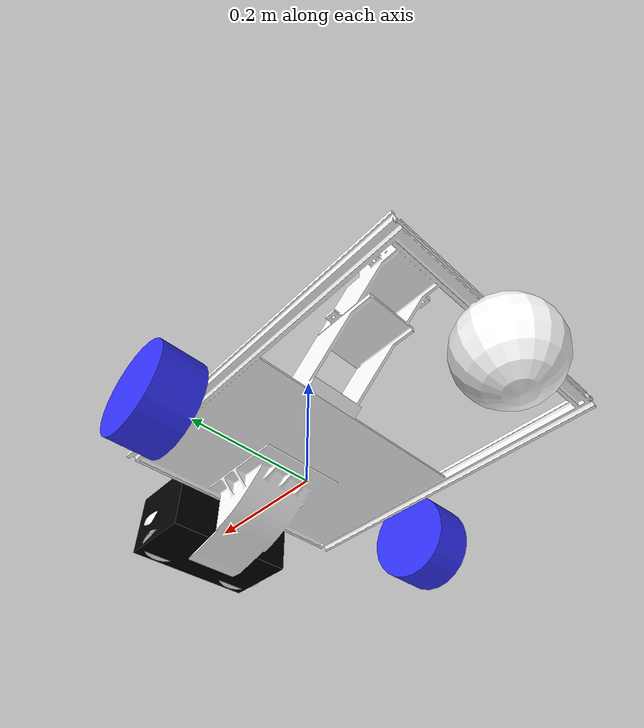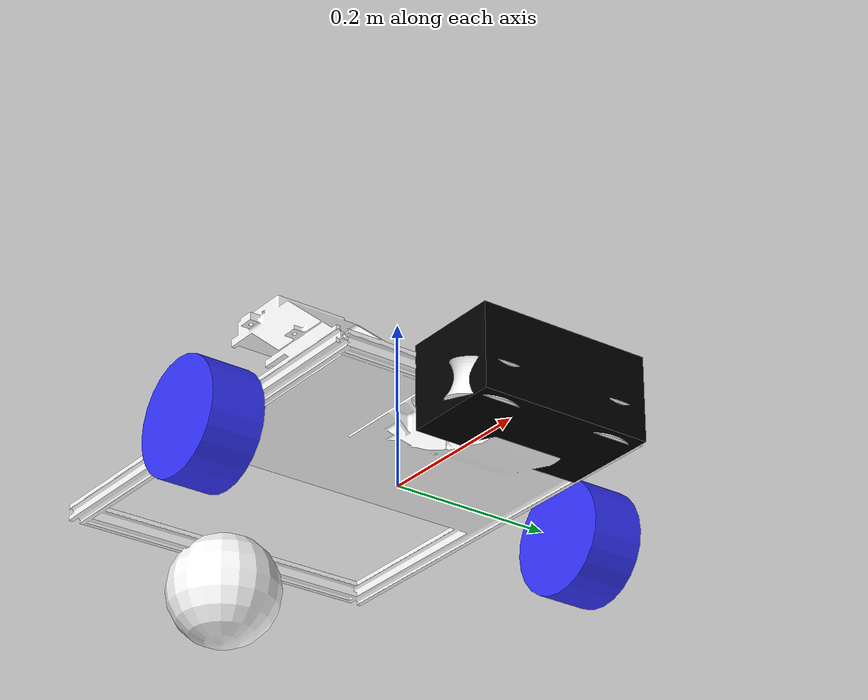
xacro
<?xml version="1.0"?>
<robot xmlns:xacro="http://www.ros.org/wiki/xacro">

    <xacro:include filename="inertial_macros.xacro"/>

    <material name="white">
        <color rgba="1 1 1 1" />
    </material>

    <material name="orange">
        <color rgba="1 0.3 0.1 1"/>
    </material>

    <material name="blue">
        <color rgba="0.2 0.2 1 1"/>
    </material>

    <material name="black">
        <color rgba="0 0 0 1"/>
    </material>

    <material name="red">
        <color rgba="1 0 0 1"/>
    </material>

    <!-- BASE LINK -->

    <link name = "base_link">

    </link>

    <!-- CHASSIS LINK -->

    <joint name = "chassis_joint" type = "fixed">
        <parent link = "base_link"/>
        <child link = "chassis_link"/>
        <origin xyz = "-0.345 0 0.035"/> <!-- We want the chassis link to sit at the edge of the chassis (100 cm behind the wheels)-->
    </joint>

    <!-- By default the visual of the link centers around the location of the joint
            so we offset its position in the origin tag to get it where we want it -->

    <link name = "chassis_link">
        <visual>
            <origin xyz = "0.26 -0.130 0.170"/>
            <geometry>
                <mesh filename="package://trace_description/meshes/chassis.stl" />
            </geometry>
            <material name = "white"/>
        </visual>

        <collision>
            <origin xyz = "0.26 0 0.0275"/>
            <geometry>
                <box size = "0.520 0.410 0.055"/>
            </geometry>
        </collision>

        <xacro:inertial_box mass="2.0" x="0.520" y="0.410" z="0.055">
            <origin xyz="0.26 0 0.0275" rpy="0 0 0"/>
        </xacro:inertial_box>
    </link>

    <!-- LEFT WHEEL LINK -->

    <!--By default cyliders are oriented along the x axis so we have to rotate them in the urdf so that they look right-->
    <!--Z axis of the wheels should also be pointing away from the robot-->

    <joint name = "left_wheel_joint" type = "continuous">
        <parent link = "base_link"/>
        <child link = "left_wheel_link"/>
        <origin xyz = "0 0.255 0" rpy = "-${pi/2} 0 0"/>
        <axis xyz = "0 0 1"/>
        <limit effort="0.05" velocity="10.0"/> <!-- Tag to limit torque and velocity within gazebo sim to make movement feel smooth-->
    </joint>

    <link name = "left_wheel_link">
        <visual>
            <geometry>
                <cylinder radius = "0.0691" length="0.065"/>
            </geometry>
            <material name = "blue"/>
        </visual>

        <collision>
            <geometry>
                <sphere radius = "0.0691"/>
            </geometry>
        </collision>

        <xacro:inertial_cylinder mass="0.1" length="0.065" radius="0.0691">
            <origin xyz="0 0 0" rpy="0 0 0"/>
        </xacro:inertial_cylinder>
    </link>

    <!-- RIGHT WHEEL LINK -->

    <joint name = "right_wheel_joint" type = "continuous">
        <parent link = "base_link"/>
        <child link = "right_wheel_link"/>
        <origin xyz = "0 -0.255 0" rpy = "${pi/2} 0 0"/>
        <axis xyz = "0 0 -1"/>
        <limit effort="0.05" velocity="10.0"/> <!-- Tag to limit torque and velocity within gazebo sim to make movement feel smooth-->
    </joint>

    <link name = "right_wheel_link">
        <visual>
            <geometry>
                <cylinder radius = "0.0691" length="0.065"/>
            </geometry>
            <material name = "blue"/>
        </visual>

        <collision>
            <geometry>
                <sphere radius = "0.0691"/>
            </geometry>
        </collision>

        <xacro:inertial_cylinder mass="0.1" length="0.065" radius="0.0691">
            <origin xyz="0 0 0" rpy="0 0 0"/>
        </xacro:inertial_cylinder>
    </link>

    <!-- CASTER WHEEL LINK -->

    <joint name = "caster_wheel_joint" type = "fixed">
        <parent link = "chassis_link" />
        <child link = "caster_wheel_link"/>
        <origin xyz = "0 0 -0.035"/>
    </joint>

    <link name ="caster_wheel_link">
        <visual>
            <geometry>
                <sphere radius = "0.0691"/>
            </geometry>
            <material name = "white"/>
        </visual>

        <collision>
            <geometry>
                <sphere radius = "0.0691"/>
            </geometry>
        </collision>

        <xacro:inertial_sphere mass="0.1" radius="0.0691">
            <origin xyz="0 0 0" rpy="0 0 0"/>
        </xacro:inertial_sphere>
    </link>

    <!-- BALL COLLECTION MECHANISM LINK -->

    <joint name = "ball_collection_mechanism_joint" type = "fixed">
        <parent link = "chassis_link" />
        <child link = "ball_collection_mechanism_link"/>
        <origin xyz = "0.580 0 -0.02"/>
    </joint>

    <link name ="ball_collection_mechanism_link">

        <visual>
            <geometry>
                <box size = "0.12 0.21 0.1"/>
            </geometry>
            <material name = "black"/>
        </visual>

        <collision>
            <origin xyz = "0 0 0"/>
            <geometry>
                <box size = "0.12 0.21 0.1"/>
            </geometry>
        </collision>

    </link>

    <!-- Gazebo tag to make the caster wheel frictionless-->
    <gazebo reference="caster_wheel_link">
        <mu1 value="0.0"/>
        <mu2 value="0.0"/>
    </gazebo>

</robot>
